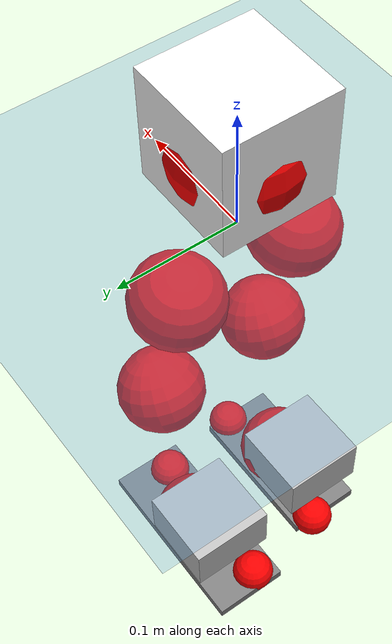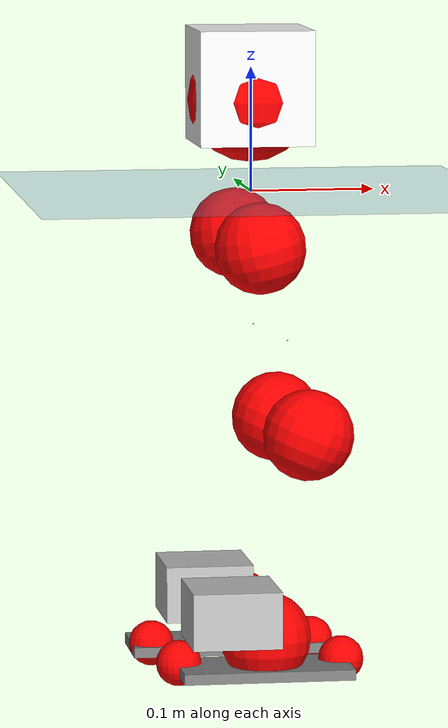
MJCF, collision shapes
<mujoco model="pi_12dof_release_v1">
  <compiler angle="radian" assetdir="assets" balanceinertia="true" inertiafromgeom="false"/>

  <option timestep="0.005" density="1.2" viscosity="2e-05"/>

  <size nkey="1"/>

  <visual>
    <quality shadowsize="8192"/>
    <map shadowclip="0.5"/>
  </visual>

  <default>
    <default class="/">
      <joint armature="0.01" damping="0.01" frictionloss="0.01"/>
      <geom contype="0" conaffinity="0" group="1" solref="-1000 -80"/>
      <site size="0.01 0.005 0.005" group="5"/>
      <general forcelimited="true" biastype="affine" gainprm="20" biasprm="0 -20 -0.5"/>
      <default class="foot">
        <geom size="0.0845 0.036 0.005" type="box" condim="6" group="4" priority="1" friction="0.9 0.2 0.2" solimp="0.015 1 0.005"/>
      </default>
      <default class="reward_collision_sphere">
        <geom group="5" rgba="1 0 0 1"/>
      </default>
    </default>
  </default>

  <asset>
    <texture type="skybox" colorspace="auto" name="//unnamed_texture_0" builtin="gradient" rgb1="0.95 0.95 0.95" rgb2="0.95 0.95 0.95" width="100" height="600"/>
    <texture type="2d" colorspace="auto" name="texplane" builtin="checker" rgb1="0.345 0.575 0.748" rgb2="0.345 0.575 0.748" markrgb="1 1 1" width="512" height="512"/>
    <material name="MatPlane" class="/" texture="texplane" texuniform="true" texrepeat="2 2" specular="0.9"/>
    <mesh name="baselink_1" class="/" file="baselink_1.STL"/>
    <mesh name="r_hip_pitch_link" class="/" file="r_hip_pitch_link.STL"/>
    <mesh name="r_hip_roll_link" class="/" file="r_hip_roll_link.STL"/>
    <mesh name="r_thigh_link" class="/" file="r_thigh_link.STL"/>
    <mesh name="r_calf_link" class="/" file="r_calf_link.STL"/>
    <mesh name="r_ankle_pitch_link" class="/" file="r_ankle_pitch_link.STL"/>
    <mesh name="r_ankle_roll_link" class="/" file="r_ankle_roll_link.STL"/>
    <mesh name="l_hip_pitch_link" class="/" file="l_hip_pitch_link.STL"/>
    <mesh name="l_hip_roll_link" class="/" file="l_hip_roll_link.STL"/>
    <mesh name="l_thigh_link" class="/" file="l_thigh_link.STL"/>
    <mesh name="l_calf_link" class="/" file="l_calf_link.STL"/>
    <mesh name="l_ankle_pitch_link" class="/" file="l_ankle_pitch_link.STL"/>
    <mesh name="l_ankle_roll_link" class="/" file="l_ankle_roll_link.STL"/>
  </asset>

  <worldbody>
    <geom name="floor" class="/" size="100 100 0.125" type="plane" group="0" material="MatPlane"/>
    <light name="toplight_shadow" class="/" pos="0 0 5" dir="0.0990148 0.0990148 -0.990148" type="directional" ambient="0.04 0.04 0.04" diffuse="0.55 0.55 0.55" specular="0.12 0.12 0.12"/>
    <light name="toplight_fill" class="/" pos="0 0 5" dir="0.0990148 0.0990148 -0.990148" type="directional" castshadow="false" ambient="0.04 0.04 0.04" diffuse="0.3 0.3 0.3" specular="0.08 0.08 0.08"/>
    <body name="trunk" pos="-0.000994144 -0.00017156 -0.00276592" quat="1 4.36041e-05 0.000206018 -0.00036289">
      <inertial pos="-0.00017033 -0.00227559 0.0470279" quat="0.698775 0.0168621 0.00663308 0.715112" mass="1.72196" diaginertia="0.00952162 0.00136148 0.00703403"/>
      <joint name="//unnamed_joint_0" type="free"/>
      <geom name="//unnamed_geom_1" class="/" type="mesh" density="0" rgba="1 1 1 1" mesh="baselink_1"/>
      <geom name="//unnamed_geom_2" class="/" size="0.0461541 0.0461541 0.0461541" pos="0 0 0.0882365" type="box" rgba="1 1 1 1"/>
      <geom name="//unnamed_geom_3" class="reward_collision_sphere" size="0.0507696" pos="0 0 0.0772069"/>
      <site name="imu" class="/" pos="-0.00390151 0.00274173 0.00972543" size="0.00923083"/>
      <camera name="track" class="/" pos="0 -1.36482 0" quat="0.707107 0.707107 0 0" mode="trackcom"/>
      <camera name="ego_camera" class="/" pos="0.0737913 0 0.198532" quat="-0.5 -0.5 0.5 0.5"/>
      <body name="r_hip_pitch_link" pos="0.000900859 -0.016371 -0.0362541" quat="0.992269 0.000714294 -0.124101 0.00100438">
        <inertial pos="0.0027819 -0.0413693 0.000841132" quat="-0.0125028 0.697757 -0.0238973 0.715826" mass="0.287751" diaginertia="9.92113e-05 1.46376e-05 0.000139768"/>
        <joint name="r_hip_pitch_joint" class="/" pos="0 0 0" axis="-0.000644305 -0.999995 -0.00304455" stiffness="0.000398103" range="-1.75275 1.2204" armature="0.00810156" damping="0.00722878" frictionloss="0.00838516"/>
        <geom name="//unnamed_geom_4" class="/" type="mesh" density="0" rgba="0.75294 0.75294 0.75294 1" mesh="r_hip_pitch_link"/>
        <geom name="//unnamed_geom_5" class="/" size="0.000461541 0.000461541 0.000461541" type="box" rgba="0.75294 0.75294 0.75294 1"/>
        <body name="r_hip_roll_link" pos="-0.000591397 -0.0357704 -0.0018504" quat="1 0.000116851 7.33545e-05 0.000204819">
          <inertial pos="0.00145912 -1.06895e-05 -0.0655838" quat="0.709394 -0.0769972 -0.0795312 0.696065" mass="0.312348" diaginertia="0.000297806 4.0577e-05 0.000207153"/>
          <joint name="r_hip_roll_joint" class="/" pos="0 0 0" axis="-0.999994 0.00332714 -0.000122359" range="-0.156662 0.533663" armature="0.00802839" damping="0.00925714" frictionloss="0.0104631"/>
          <geom name="//unnamed_geom_6" class="/" type="mesh" density="0" rgba="0.75294 0.75294 0.75294 1" mesh="r_hip_roll_link"/>
          <geom name="//unnamed_geom_7" class="/" size="0.000461541 0.000461541 0.000461541" type="box" rgba="0.75294 0.75294 0.75294 1"/>
          <geom name="//unnamed_geom_8" class="reward_collision_sphere" size="0.0369233"/>
          <body name="r_thigh_link" pos="0.00269033 -0.00215088 -0.0773032" quat="0.999999 -0.000946936 0.000204622 0.000423859">
            <inertial pos="4.52163e-05 -2.98051e-05 -0.0533699" quat="0.740231 0.67235 -2.15379e-05 0.00187627" mass="0.0864726" diaginertia="0.000111494 1.39634e-05 9.07431e-05"/>
            <joint name="r_thigh_joint" class="/" pos="0 0 0" axis="0.0145129 0.00753264 -0.999866" stiffness="0.00960517" range="-0.264225 0.623804" armature="0.00957116" damping="0.0058551" frictionloss="0.00911303"/>
            <geom name="//unnamed_geom_9" class="/" type="mesh" density="0" rgba="0.75294 0.75294 0.75294 1" mesh="r_thigh_link"/>
            <geom name="//unnamed_geom_10" class="/" size="0.000461541 0.000461541 0.000461541" type="box" rgba="0.75294 0.75294 0.75294 1"/>
            <body name="r_calf_link" pos="-0.0023661 -0.00146597 -0.0785342" quat="0.947645 -0.000383498 0.319326 0.000548686">
              <inertial pos="0.0016291 -0.000187684 -0.0778046" quat="0.999984 -0.00311421 0.000120064 0.00472112" mass="0.655611" diaginertia="0.00325899 0.000555056 0.000293987"/>
              <joint name="r_calf_joint" class="/" pos="0 0 0" axis="0.0106354 -0.999943 -0.00134554" stiffness="0.000197435" range="-1.62741 0.703648" armature="0.00791616" damping="0.0216673" frictionloss="0.00801117"/>
              <geom name="//unnamed_geom_11" class="/" type="mesh" density="0" rgba="0.75294 0.75294 0.75294 1" mesh="r_calf_link"/>
              <geom name="//unnamed_geom_12" class="/" size="0.000461541 0.000461541 0.000461541" type="box" rgba="0.75294 0.75294 0.75294 1"/>
              <geom name="//unnamed_geom_13" class="reward_collision_sphere" size="0.0369233"/>
              <body name="r_ankle_pitch_link" pos="-0.00125481 0.000887569 -0.156945" quat="0.980053 4.2921e-05 -0.198734 4.59854e-05">
                <inertial pos="0.00495796 0.00214729 0.000808273" quat="-0.00145581 0.705155 0.00716029 0.709016" mass="0.131568" diaginertia="0.000271184 3.28913e-05 0.000195299"/>
                <joint name="r_ankle_pitch_joint" class="/" pos="0 0 0" axis="0.00499475 -0.999987 0.000692052" range="-1.31569 0.504727" armature="0.00913375" damping="0" frictionloss="0.00924237"/>
                <geom name="//unnamed_geom_14" class="/" type="mesh" density="0" rgba="0.75294 0.75294 0.75294 1" mesh="r_ankle_pitch_link"/>
                <geom name="//unnamed_geom_15" class="/" size="0.0360002 0.0369233 0.0230771" type="box" rgba="0.75294 0.75294 0.75294 1"/>
                <body name="r_ankle_roll_link" pos="0.0772166 0.00136165 0.00183169" quat="1 -9.45833e-06 -0.000302712 -0.000307712">
                  <inertial pos="-0.0239716 0.000412676 -0.0144032" quat="0.556341 0.435796 0.44387 0.55095" mass="0.41063" diaginertia="0.00103265 0.00014825 0.000457484"/>
                  <joint name="r_ankle_roll_joint" class="/" pos="0 0 0" axis="-0.999983 -0.00582512 -0.000480537" range="-0.208337 0.197556" armature="0.0101288" damping="0" frictionloss="0.0102026"/>
                  <geom name="//unnamed_geom_16" class="/" type="mesh" density="0" rgba="0.75294 0.75294 0.75294 1" mesh="r_ankle_roll_link"/>
                  <geom name="//unnamed_geom_17" class="/" type="mesh" rgba="0.75294 0.75294 0.75294 1" mesh="r_ankle_roll_link"/>
                  <geom name="right_foot" class="foot" size="0.0694553 0.0332105 0.00434198" pos="-0.0501781 0 -0.0485301"/>
                  <geom name="//unnamed_geom_19" class="reward_collision_sphere" size="0.0369233" pos="-0.0491942 0 -0.0220591"/>
                  <geom name="//unnamed_geom_20" class="reward_collision_sphere" size="0.0184617" pos="0.0147583 0.0136482 -0.0441183"/>
                  <geom name="//unnamed_geom_21" class="reward_collision_sphere" size="0.0184617" pos="-0.118066 0.0136482 -0.0441183"/>
                  <site name="right_foot" class="foot" pos="-0.0501781 0 -0.0485301" size="0.00923083"/>
                </body>
              </body>
            </body>
          </body>
        </body>
      </body>
      <body name="l_hip_pitch_link" pos="-0.00143515 0.0183371 -0.0361815" quat="0.992205 6.85275e-05 -0.124619 -0.000514364">
        <inertial pos="0.00361153 0.0384474 -0.000873492" quat="-0.0445956 0.701538 0.0180659 0.711005" mass="0.307992" diaginertia="0.000112495 1.53346e-05 0.000156048"/>
        <joint name="l_hip_pitch_joint" class="/" pos="0 0 0" axis="0.00265882 0.999919 -0.0124722" range="-1.28439 1.75556" armature="0.00984683" damping="0.00908987" frictionloss="0.00923521"/>
        <geom name="//unnamed_geom_22" class="/" type="mesh" density="0" rgba="0.75294 0.75294 0.75294 1" mesh="l_hip_pitch_link"/>
        <geom name="//unnamed_geom_23" class="/" size="0.000461541 0.000461541 0.000461541" type="box" rgba="0.75294 0.75294 0.75294 1"/>
        <body name="l_hip_roll_link" pos="-0.00323674 0.0382379 -0.000206771" quat="1 2.63783e-05 5.97112e-06 5.6049e-05">
          <inertial pos="-0.000819218 0.0023643 -0.0674553" quat="0.698661 -0.0775699 -0.0735121 0.707426" mass="0.306049" diaginertia="0.000309225 3.97277e-05 0.000214056"/>
          <joint name="l_hip_roll_joint" class="/" pos="0 0 0" axis="-0.999984 -0.00548995 -0.0010599" range="-0.48267 0.172133" armature="0.00909046" damping="0" frictionloss="0.00833437"/>
          <geom name="//unnamed_geom_24" class="/" type="mesh" density="0" rgba="0.75294 0.75294 0.75294 1" mesh="l_hip_roll_link"/>
          <geom name="//unnamed_geom_25" class="/" size="0.000461541 0.000461541 0.000461541" type="box" rgba="0.75294 0.75294 0.75294 1"/>
          <geom name="//unnamed_geom_26" class="reward_collision_sphere" size="0.0369233"/>
          <body name="l_thigh_link" pos="-0.00330991 0.000589674 -0.0776614" quat="0.999999 -0.000636475 -0.000778384 -9.51143e-05">
            <inertial pos="0.000252636 -0.000961311 -0.051073" quat="0.674589 0.738193 -0.000404635 0.000118098" mass="0.0889942" diaginertia="0.000114417 1.39633e-05 9.42461e-05"/>
            <joint name="l_thigh_joint" class="/" pos="0 0 0" axis="-0.00828436 0.00619896 -0.999946" stiffness="0.0023188" range="-0.659179 0.353562" armature="0.0104429" damping="0" frictionloss="0.01054"/>
            <geom name="//unnamed_geom_27" class="/" type="mesh" density="0" rgba="0.75294 0.75294 0.75294 1" mesh="l_thigh_link"/>
            <geom name="//unnamed_geom_28" class="/" size="0.000461541 0.000461541 0.000461541" type="box" rgba="0.75294 0.75294 0.75294 1"/>
            <body name="l_calf_link" pos="-0.0010848 -0.00149467 -0.0793234" quat="0.947708 -0.001002 0.319138 0.000729092">
              <inertial pos="-0.00122682 0.00202854 -0.0749854" quat="0.999993 0.00123696 0.00351962 0.000821382" mass="0.618925" diaginertia="0.00315605 0.000500786 0.000271565"/>
              <joint name="l_calf_joint" class="/" pos="0 0 0" axis="-0.00360938 0.999956 0.00861147" range="-0.610797 1.64813" armature="0.00836642" damping="0.00512378" frictionloss="0.00836209"/>
              <geom name="//unnamed_geom_29" class="/" type="mesh" density="0" rgba="0.75294 0.75294 0.75294 1" mesh="l_calf_link"/>
              <geom name="//unnamed_geom_30" class="/" size="0.000461541 0.000461541 0.000461541" type="box" rgba="0.75294 0.75294 0.75294 1"/>
              <geom name="//unnamed_geom_31" class="reward_collision_sphere" size="0.0369233"/>
              <body name="l_ankle_pitch_link" pos="-0.0010007 -0.0019986 -0.153241" quat="0.980134 -0.000261649 -0.198336 -0.000406258">
                <inertial pos="0.00755811 -0.00158697 -0.000290846" quat="-0.0021354 0.707266 0.00251472 0.70694" mass="0.13582" diaginertia="0.000274546 3.23468e-05 0.000195632"/>
                <joint name="l_ankle_pitch_joint" class="/" pos="0 0 0" axis="-0.0130494 0.999915 -0.000213039" range="-0.495669 1.31889" armature="0.00939336" damping="0" frictionloss="0.00929116"/>
                <geom name="//unnamed_geom_32" class="/" type="mesh" density="0" rgba="0.75294 0.75294 0.75294 1" mesh="l_ankle_pitch_link"/>
                <geom name="//unnamed_geom_33" class="/" size="0.0360002 0.0369233 0.0230771" type="box" rgba="0.75294 0.75294 0.75294 1"/>
                <body name="l_ankle_roll_link" pos="0.071867 -0.000660692 0.000512842" quat="0.999999 -0.000309491 0.00120851 0.000233605">
                  <inertial pos="-0.0265236 -0.00035079 -0.0166665" quat="0.558983 0.426566 0.42834 0.567543" mass="0.398773" diaginertia="0.000993891 0.000155007 0.000451798"/>
                  <joint name="l_ankle_roll_joint" class="/" pos="0 0 0" axis="-0.999985 0.00358434 -0.004157" range="-0.158834 0.148844" armature="0.0085077" damping="0.0058423" frictionloss="0.00870189"/>
                  <geom name="//unnamed_geom_34" class="/" type="mesh" density="0" rgba="0.75294 0.75294 0.75294 1" mesh="l_ankle_roll_link"/>
                  <geom name="//unnamed_geom_35" class="/" type="mesh" rgba="0.75294 0.75294 0.75294 1" mesh="l_ankle_roll_link"/>
                  <geom name="left_foot" class="foot" size="0.0840819 0.0332452 0.00433489" pos="-0.0501781 0 -0.0485301"/>
                  <geom name="//unnamed_geom_37" class="reward_collision_sphere" size="0.0369233" pos="-0.0491942 0 -0.0220591"/>
                  <geom name="//unnamed_geom_38" class="reward_collision_sphere" size="0.0184617" pos="0.0147583 -0.0136482 -0.0441183"/>
                  <geom name="//unnamed_geom_39" class="reward_collision_sphere" size="0.0184617" pos="-0.118066 -0.0136482 -0.0441183"/>
                  <site name="left_foot" class="foot" pos="-0.0501781 0 -0.0485301" size="0.00923083"/>
                </body>
              </body>
            </body>
          </body>
        </body>
      </body>
    </body>
  </worldbody>

  <contact>
    <pair class="/" geom1="floor" geom2="right_foot" name="//unnamed_contact_1"/>
    <pair class="/" geom1="floor" geom2="left_foot" name="//unnamed_contact_0"/>
  </contact>

  <actuator>
    <general name="r_hip_pitch_joint" class="/" joint="r_hip_pitch_joint" forcerange="-20.8292 20.8292" gainprm="18.702" biasprm="0 -18.702 -0.482912"/>
    <general name="r_hip_roll_joint" class="/" joint="r_hip_roll_joint" forcerange="-17.7599 17.7599" gainprm="18.702" biasprm="0 -18.702 -0.482912"/>
    <general name="r_thigh_joint" class="/" joint="r_thigh_joint" forcerange="-21.3262 21.3262" gainprm="18.702" biasprm="0 -18.702 -0.482912"/>
    <general name="r_calf_joint" class="/" joint="r_calf_joint" forcerange="-19.6593 19.6593" gainprm="18.702" biasprm="0 -18.702 -0.482912"/>
    <general name="r_ankle_pitch_joint" class="/" joint="r_ankle_pitch_joint" forcerange="-17.6743 17.6743" gainprm="18.702" biasprm="0 -18.702 -0.482912"/>
    <general name="r_ankle_roll_joint" class="/" joint="r_ankle_roll_joint" forcerange="-19.3044 19.3044" gainprm="18.702" biasprm="0 -18.702 -0.482912"/>
    <general name="l_hip_pitch_joint" class="/" joint="l_hip_pitch_joint" forcerange="-19.6558 19.6558" gainprm="18.702" biasprm="0 -18.702 -0.482912"/>
    <general name="l_hip_roll_joint" class="/" joint="l_hip_roll_joint" forcerange="-17.3759 17.3759" gainprm="18.702" biasprm="0 -18.702 -0.482912"/>
    <general name="l_thigh_joint" class="/" joint="l_thigh_joint" forcerange="-18.7601 18.7601" gainprm="18.702" biasprm="0 -18.702 -0.482912"/>
    <general name="l_calf_joint" class="/" joint="l_calf_joint" forcerange="-17.3198 17.3198" gainprm="18.702" biasprm="0 -18.702 -0.482912"/>
    <general name="l_ankle_pitch_joint" class="/" joint="l_ankle_pitch_joint" forcerange="-21.1735 21.1735" gainprm="18.702" biasprm="0 -18.702 -0.482912"/>
    <general name="l_ankle_roll_joint" class="/" joint="l_ankle_roll_joint" forcerange="-17.91 17.91" gainprm="18.702" biasprm="0 -18.702 -0.482912"/>
  </actuator>

  <sensor>
    <gyro site="imu" name="imu_angular_velocity"/>
    <velocimeter site="imu" name="imu_linear_velocity"/>
    <framelinvel objtype="site" objname="left_foot" name="left_foot_global_linear_velocity"/>
    <framelinvel objtype="site" objname="right_foot" name="right_foot_global_linear_velocity"/>
  </sensor>

  <keyframe>
    <key name="home" qpos="0 0 0.291 1 0 0 0 0.4 0 0 -0.8 0.4 0 -0.4 0 0 0.8 -0.4 0"/>
  </keyframe>
</mujoco>
